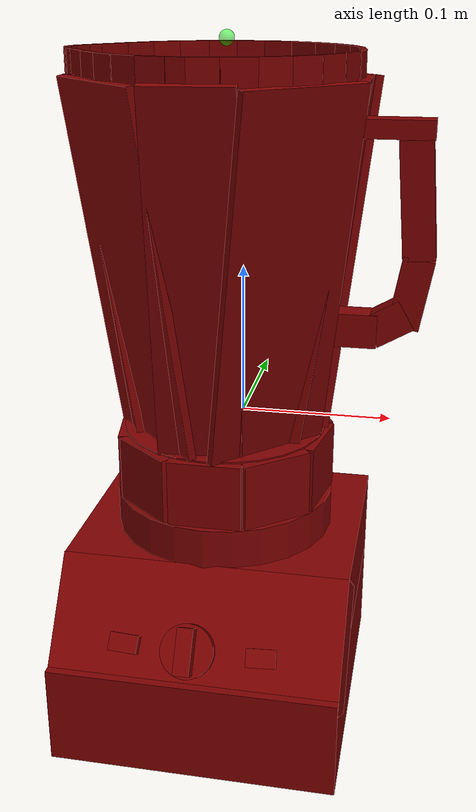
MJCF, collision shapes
<?xml version='1.0' encoding='UTF-8'?>
<mujoco model="model">
  <option timestep="0.002" gravity="0.0 0.0 -9.81"/>
  <compiler angle="radian"/>
  <asset>
    <mesh file="visuals/blade.obj" name="blade_vis"/>
    <mesh file="visuals/Body001.obj" name="Body001_vis"/>
    <mesh file="visuals/knob_speed.obj" name="knob_speed_vis"/>
    <mesh file="visuals/pitcher.obj" name="pitcher_vis"/>
    <mesh file="visuals/pitcher_main.obj" name="pitcher_main_vis"/>
    <mesh file="visuals/power_button.obj" name="power_button_vis"/>
    <mesh file="visuals/pulse_button.obj" name="pulse_button_vis"/>
    <texture file="visuals/T_BC001.png" name="Body001_material" type="2d"/>
    <material name="Body001_material" rgba="1 1 1 1.0" texture="Body001_material" shininess="0.5" specular="0.3103448502657381"/>
    <texture file="visuals/T_BC001.png" name="knob_speed_material" type="2d"/>
    <material name="knob_speed_material" rgba="1 1 1 1.0" texture="knob_speed_material" shininess="0.5" specular="0.3103448502657381"/>
    <texture file="visuals/T_BC001.png" name="pitcher_material" type="2d"/>
    <material name="pitcher_material" rgba="1 1 1 1.0" texture="pitcher_material" shininess="0.5" specular="0.3103448502657381"/>
    <texture file="visuals/T_BC001.png" name="blade_material" type="2d"/>
    <material name="blade_material" rgba="1 1 1 1.0" texture="blade_material" shininess="0.5" specular="0.3103448502657381"/>
    <material name="pitcher_main_material" rgba="0.04431306570768356 0.04431306570768356 0.04431306570768356 0.699999988079071" shininess="0.5" specular="0.3103448502657381"/>
    <texture file="visuals/T_BC001.png" name="power_button_material" type="2d"/>
    <material name="power_button_material" rgba="1 1 1 1.0" texture="power_button_material" shininess="0.5" specular="0.3103448502657381"/>
    <texture file="visuals/T_BC001.png" name="pulse_button_material" type="2d"/>
    <material name="pulse_button_material" rgba="1 1 1 1.0" texture="pulse_button_material" shininess="0.5" specular="0.3103448502657381"/>
  </asset>
  <default>
    <default class="visual">
      <geom conaffinity="0" contype="0" group="1" type="mesh"/>
    </default>
    <default class="collision">
      <geom group="0" rgba="0.5 0 0 0.5" density="1000" solref="0.004 1" solimp="0.998 0.998 0.001"/>
    </default>
    <default class="spawn">
      <geom group="0" rgba="1 1 1 0.5" contype="0" conaffinity="0"/>
      <site group="0" rgba="1 1 1 0.5"/>
    </default>
    <default class="region">
      <geom group="1" conaffinity="0" contype="0" rgba="0 1 0 0" mass="0"/>
    </default>
  </default>
  <worldbody>
    <body>
      <body name="object">
        <geom mesh="Body001_vis" type="mesh" solimp="0.998 0.998 0.001" solref="0.001 1" friction="0.95 0.3 0.1" class="visual" material="Body001_material"/>
        <geom type="box" pos="-0.01809036 -0.04847207 -0.15281687" size="0.09955644607543945 0.044624779373407364 0.032997120171785355" quat="0.8877590894699097 0.46030834317207336 0.0 0.0" class="collision"/>
        <geom type="box" pos="-0.01809036 0.00582542 -0.19773877" size="0.09955644607543945 0.10717274248600006 0.03572746366262436" quat="1.0 0.0 0.0 0.0" class="collision"/>
        <geom type="box" pos="-0.01809036 0.03171817 -0.13102740" size="0.09955644607543945 0.08168954402208328 0.032997116446495056" quat="1.0 0.0 0.0 0.0" class="collision"/>
        <geom type="cylinder" pos="-0.01852071 0.02733906 -0.08775429" size="0.07834652066230774 0.01722797192633152" quat="1.0 0.0 0.0 0.0" class="collision"/>
        <body name="knob_speed">
          <joint axis="0.0 0.8386704921722412 -0.5446390509605408" pos="-0.01888166 -0.10047842 -0.13289477" limited="true" name="knob_speed_joint" range="0.0 3.141592653589793" type="hinge" damping="0.05" armature="0.001"/>
          <geom mesh="knob_speed_vis" type="mesh" solimp="0.998 0.998 0.001" solref="0.001 1" friction="0.95 0.3 0.1" class="visual" material="knob_speed_material"/>
          <geom type="cylinder" pos="-0.01886045 -0.09661132 -0.13517393" size="0.018016861751675606 0.0032423920929431915" quat="0.8788170218467712 0.47715887427330017 -1.5054357599709063e-16 -4.4593045433660155e-17" class="collision"/>
          <geom class="collision" type="box" pos="-0.01881884 -0.10449058 -0.13009632" size="0.005413155537098646 0.005655909422785044 0.015304354019463062" quat="0.9588197469711304 -0.28401532769203186 5.934630009640784e-10 -1.7668519980418296e-09" name="knob_speed_main"/>
        </body>
        <body name="pitcher">
          <geom mesh="pitcher_vis" type="mesh" solimp="0.998 0.998 0.001" solref="0.001 1" friction="0.95 0.3 0.1" class="visual" material="pitcher_material"/>
          <geom class="collision" type="box" pos="0.10832232 0.02571175 0.08171118" size="0.023755626752972603 0.00880428496748209 0.010503297671675682" quat="0.6425239443778992 0.0 0.7662656307220459 0.0" name="pitcher_handle_3"/>
          <geom class="collision" type="box" pos="0.09394824 0.02562126 0.18678884" size="0.023671306669712067 0.00856267660856247 0.006058376282453537" quat="1.0 0.0 0.0 0.0" name="pitcher_handle_2"/>
          <geom class="collision" type="box" pos="0.10906937 0.02574660 0.14237803" size="0.038404859602451324 0.008756334893405437 0.010745563544332981" quat="0.736207127571106 0.0031635200139135122 0.6767215132713318 -0.006083985324949026" name="pitcher_handle_1"/>
          <geom class="collision" type="box" pos="0.09454579 0.02558017 0.06034962" size="0.013548550195991993 0.00896508153527975 0.011131912469863892" quat="0.25916787981987 -0.0006767964805476367 0.96578049659729 -0.009976900182664394" name="pitcher_handle_4"/>
          <geom class="collision" type="box" pos="0.07046634 0.02563762 0.05462812" size="0.016726261004805565 0.009409124031662941 0.011546011082828045" quat="1.0 0.0 0.0 0.0" name="pitcher_handle_0"/>
          <geom type="cylinder" pos="-0.01852071 0.02733906 -0.04532224" size="0.07198860496282578 0.023390205577015877" quat="1.0 0.0 0.0 0.0" class="collision"/>
          <body name="blade">
            <geom mesh="blade_vis" type="mesh" solimp="0.998 0.998 0.001" solref="0.001 1" friction="0.95 0.3 0.1" class="visual" material="blade_material"/>
            <geom type="cylinder" pos="-0.01881684 0.02567838 -0.00838821" size="0.007670124527066946 0.010787472128868103" quat="1.0 0.0 0.0 0.0" class="collision"/>
            <geom type="box" pos="-0.03225362 0.02584977 -0.00055446" size="0.008050991222262383 0.005571782123297453 0.000517530832439661" quat="0.979388952255249 0.0 -0.2019834816455841 0.0" class="collision"/>
            <geom type="box" pos="-0.04816998 0.02581310 -0.00748781" size="0.009483198635280132 0.003432794939726591 0.0005175308906473219" quat="0.9779711961746216 0.0 -0.20873989164829254 0.0" class="collision"/>
            <geom type="box" pos="0.00965797 0.02581310 -0.00746335" size="0.009483198635280132 0.003432794939726591 0.0005175308906473219" quat="7.383476940958644e-08 0.9779711961746216 1.5759423988015442e-08 -0.20873990654945374" class="collision"/>
            <geom type="box" pos="-0.00622194 0.02584977 -0.00040238" size="0.008050991222262383 0.005571782123297453 0.000517530832439661" quat="7.39418126727287e-08 0.979388952255249 1.524934134522482e-08 -0.2019834816455841" class="collision"/>
            <geom type="box" pos="-0.01854210 0.05551013 0.01383857" size="0.009483198635280132 0.003432794939726591 0.0005175308906473219" quat="0.6829333901405334 0.18330861628055573 -0.18330861628055573 0.6829333305358887" class="collision"/>
            <geom type="box" pos="-0.01850543 0.04039862 0.00529199" size="0.008050991222262383 0.005571782123297453 0.000517530832439661" quat="0.6841824650764465 0.17858955264091492 -0.17858952283859253 0.6841826438903809" class="collision"/>
            <geom type="box" pos="-0.01850543 0.01200211 0.00529199" size="0.008050991222262383 0.005571782123297453 0.000517530832439661" quat="0.17858953773975372 0.6841825842857361 0.6841825246810913 -0.17858950793743134" class="collision"/>
            <geom type="box" pos="-0.01854210 -0.00310941 0.01383857" size="0.009483198635280132 0.003432794939726591 0.0005175308906473219" quat="0.18330863118171692 0.6829333305358887 0.6829333901405334 -0.18330854177474976" class="collision"/>
          </body>
          <body name="pitcher_main">
            <geom class="region" type="cylinder" size="0.04703454300761223 0.09308323264122009" pos="-0.01868275 0.02462219 0.11455204" rgba="0 0 1 0.5" name="reg_int"/>
            <geom mesh="pitcher_main_vis" type="mesh" solimp="0.998 0.998 0.001" solref="0.001 1" friction="0.95 0.3 0.1" class="visual" material="pitcher_main_material"/>
            <geom type="box" pos="-0.07090936 -0.02348489 0.09613126" size="0.045629244297742844 0.0028163788374513388 0.12308038771152496" quat="0.9212555885314941 0.06958147138357162 -0.028821583837270737 -0.38159650564193726" class="collision"/>
            <geom type="box" pos="-0.01756476 -0.04493246 -0.04605228" size="0.025154929608106613 0.0036438615061342716 0.02311090938746929" quat="1.0 0.0 0.0 0.0" class="collision"/>
            <geom type="box" pos="-0.06783344 0.07670075 0.09601747" size="0.044201068580150604 0.003652127692475915 0.1228383257985115" quat="0.3815966546535492 0.02882160060107708 -0.06958146393299103 -0.9212555289268494" class="collision"/>
            <geom type="box" pos="0.03378635 0.07425912 0.09535586" size="0.045629240572452545 0.003518736455589533 0.12218938767910004" quat="0.38159632682800293 0.028821585699915886 0.06958150118589401 0.9212556481361389" class="collision"/>
            <geom type="box" pos="0.03085113 -0.02691572 0.09571808" size="0.045629244297742844 0.0028172575403004885 0.12266232073307037" quat="0.9212555289268494 0.06958147883415222 0.02882162295281887 0.3815966546535492" class="collision"/>
            <geom type="box" pos="-0.06309783 -0.02888154 -0.04605228" size="0.025154929608106613 0.0036438615061342716 0.023110834881663322" quat="0.9397565126419067 0.0 0.0 -0.3418445587158203" class="collision"/>
            <geom type="box" pos="-0.08760930 0.01232006 -0.04605228" size="0.025154929608106613 0.0036438617389649153 0.023110834881663322" quat="0.7679169774055481 0.0 0.0 -0.6405494213104248" class="collision"/>
            <geom type="box" pos="-0.07989546 0.06015814 -0.04605228" size="0.025154927745461464 0.0036438615061342716 0.023110834881663322" quat="0.501535177230835 0.0 0.0 -0.8651372790336609" class="collision"/>
            <geom type="box" pos="-0.04423649 0.09134788 -0.04605228" size="0.025154929608106613 0.0036438617389649153 0.023110834881663322" quat="0.1822759509086609 0.0 0.0 -0.9832473993301392" class="collision"/>
            <geom type="box" pos="0.00501489 0.09234687 -0.04605228" size="0.025154929608106613 0.0036438615061342716 0.023110834881663322" quat="0.1721271127462387 0.0 0.0 0.9850747585296631" class="collision"/>
            <geom type="box" pos="0.04248062 0.06168171 -0.04605228" size="0.025154929608106613 0.0036438617389649153 0.023110834881663322" quat="0.4993874430656433 0.0 0.0 0.8663787841796875" class="collision"/>
            <geom type="box" pos="0.05136558 0.01394640 -0.04605228" size="0.02515493333339691 0.003643861971795559 0.023110834881663322" quat="0.7668055891990662 0.0 0.0 0.6418794393539429" class="collision"/>
            <geom type="box" pos="0.02732160 -0.02824716 -0.04605228" size="0.025154931470751762 0.0036438617389649153 0.023110834881663322" quat="0.9407618045806885 0.0 0.0 0.33906814455986023" class="collision"/>
            <geom type="box" pos="-0.09642414 0.03989807 0.09310075" size="0.016055718064308167 0.002642229665070772 0.1249026358127594" quat="0.5063578486442566 0.06537144631147385 -0.037401046603918076 -0.8590282201766968" class="collision"/>
            <geom type="box" pos="-0.01886434 0.09872382 0.09557387" size="0.02850382775068283 0.00496790511533618 0.12339305877685547" quat="0.03943026438355446 0.00297812232747674 0.07525552809238434 0.9963799715042114" class="collision"/>
            <geom type="box" pos="0.05364773 0.02495055 0.09493019" size="0.02850382775068283 0.0036250585690140724 0.12294599413871765" quat="0.6996919512748718 0.0528470017015934 0.05366060510277748 0.7104638814926147" class="collision"/>
            <geom type="box" pos="-0.02162680 -0.04941703 0.09608285" size="0.02850382775068283 0.0036871093325316906 0.12410243600606918" quat="0.9962204694747925 0.07524346560239792 0.003268356202170253 0.04327280446887016" class="collision"/>
            <geom type="box" pos="-0.01129615 -0.06292772 0.22492507" size="0.009778773412108421 0.0017852018354460597 0.008487303741276264" quat="0.06675932556390762 0.0 -0.0 -0.9977691173553467" class="collision"/>
            <geom type="box" pos="0.00809636 -0.05864059 0.22492507" size="0.010880018584430218 0.0017852018354460597 0.008487303741276264" quat="0.14713305234909058 0.0 -0.0 -0.9891167283058167" class="collision"/>
            <geom type="box" pos="0.02641303 -0.05007567 0.22492507" size="0.010880018584430218 0.0017852018354460597 0.008487303741276264" quat="0.2713358700275421 0.0 -0.0 -0.9624847173690796" class="collision"/>
            <geom type="box" pos="0.04298128 -0.03712368 0.22492507" size="0.010880018584430218 0.0017852018354460597 0.008487303741276264" quat="0.3708913028240204 0.0 -0.0 -0.9286763072013855" class="collision"/>
            <geom type="box" pos="0.05604438 -0.02107970 0.22492507" size="0.010880018584430218 0.001785201602615416 0.008487303741276264" quat="0.48822838068008423 0.0 -0.0 -0.8727158904075623" class="collision"/>
            <geom type="box" pos="0.06508433 -0.00206348 0.22492507" size="0.010880018584430218 0.001785201602615416 0.008487303741276264" quat="0.5862191915512085 0.0 -0.0 -0.810152530670166" class="collision"/>
            <geom type="box" pos="0.06928605 0.01792838 0.22492507" size="0.010880018584430218 0.0017852018354460597 0.008487303741276264" quat="0.6735625267028809 0.0 -0.0 -0.7391302585601807" class="collision"/>
            <geom type="box" pos="0.06869246 0.03823472 0.22492507" size="0.010880018584430218 0.0017852018354460597 0.008487303741276264" quat="0.7563185691833496 0.0 -0.0 -0.6542035341262817" class="collision"/>
            <geom type="box" pos="0.06322093 0.05826223 0.22492507" size="0.010880018584430218 0.0017852018354460597 0.008487303741276264" quat="0.8274128437042236 0.0 -0.0 -0.5615941286087036" class="collision"/>
            <geom type="box" pos="0.05381114 0.07569932 0.22492507" size="0.010880018584430218 0.0017852018354460597 0.008487303741276264" quat="0.8888170719146729 0.0 -0.0 -0.458262175321579" class="collision"/>
            <geom type="box" pos="0.03985910 0.09137375 0.22492507" size="0.010880018584430218 0.0017852018354460597 0.008487303741276264" quat="0.9347479939460754 0.0 -0.0 -0.3553113043308258" class="collision"/>
            <geom type="box" pos="0.02284788 0.10324140 0.22492507" size="0.010880018584430218 0.0017852018354460597 0.008487303741276264" quat="0.9685055017471313 0.0 -0.0 -0.24899208545684814" class="collision"/>
            <geom type="box" pos="0.00358632 0.11081584 0.22492507" size="0.010880018584430218 0.0017852018354460597 0.008487303741276264" quat="0.9915497303009033 0.0 -0.0 -0.1297272890806198" class="collision"/>
            <geom type="box" pos="-0.01629415 0.11363297 0.22492507" size="0.010880018584430218 0.001785201602615416 0.008487303741276264" quat="0.9999117255210876 0.0 -0.0 -0.013286758214235306" class="collision"/>
            <geom type="box" pos="-0.03664250 0.11170036 0.22492507" size="0.010880018584430218 0.0017852018354460597 0.008487303741276264" quat="0.9943395256996155 0.0 0.0 0.10624910891056061" class="collision"/>
            <geom type="box" pos="-0.05585400 0.10511915 0.22492507" size="0.010880018584430218 0.0017852018354460597 0.008487303741276264" quat="0.9766029119491577 0.0 0.0 0.21505045890808105" class="collision"/>
            <geom type="box" pos="-0.07388428 0.09382351 0.22492507" size="0.010880018584430218 0.0017852018354460597 0.008487303741276264" quat="0.9429963231086731 0.0 0.0 0.3328031897544861" class="collision"/>
            <geom type="box" pos="-0.08827139 0.07911872 0.22492507" size="0.010880018584430218 0.001785201602615416 0.008487303741276264" quat="0.9031723737716675 0.0 0.0 0.42927801609039307" class="collision"/>
            <geom type="box" pos="-0.10128652 0.06177015 0.22492507" size="0.010880018584430218 0.0016841922188177705 0.008487303741276264" quat="0.8911570906639099 0.0 0.0 0.4536948800086975" class="collision"/>
            <geom type="box" pos="-0.11050456 0.04910029 0.22492507" size="0.005767347291111946 0.0016841922188177705 0.008487303741276264" quat="0.8911570906639099 0.0 0.0 0.4536948800086975" class="collision"/>
            <geom type="box" pos="-0.11632763 0.03943764 0.22492507" size="0.005767347291111946 0.0016841922188177705 0.008487303741276264" quat="0.8530058264732361 0.0 0.0 0.5219014286994934" class="collision"/>
            <geom type="box" pos="-0.11978912 0.02965660 0.22492507" size="0.005767347291111946 0.0016841919859871268 0.008487303741276264" quat="0.7735803723335266 0.0 0.0 0.6336982250213623" class="collision"/>
            <geom type="box" pos="-0.11961715 0.02076388 0.22492507" size="0.004639361519366503 0.0016841922188177705 0.008487303741276264" quat="0.6352989673614502 0.0 0.0 0.7722662687301636" class="collision"/>
            <geom type="box" pos="-0.11632067 0.01172132 0.22492507" size="0.005767347291111946 0.0016841919859871268 0.008487303741276264" quat="0.5287463665008545 0.0 0.0 0.8487798571586609" class="collision"/>
            <geom type="box" pos="-0.11177382 0.00402076 0.22492507" size="0.005767347291111946 0.0016841922188177705 0.008487303741276264" quat="0.4682562053203583 0.0 0.0 0.8835927248001099" class="collision"/>
            <geom type="box" pos="-0.10198892 -0.00949936 0.22492507" size="0.011069326661527157 0.0016841919859871268 0.008487303741276264" quat="0.4518972337245941 0.0 0.0 0.8920699954032898" class="collision"/>
            <geom type="box" pos="-0.08899396 -0.02687066 0.22492507" size="0.011069326661527157 0.0016841919859871268 0.008487303741276264" quat="0.4328644275665283 0.0 0.0 0.9014590382575989" class="collision"/>
            <geom type="box" pos="-0.07489772 -0.04174084 0.22492507" size="0.00976540707051754 0.001684191869571805 0.008487303741276264" quat="0.3468650281429291 0.0 0.0 0.937915027141571" class="collision"/>
            <geom type="box" pos="-0.05962705 -0.05228162 0.22492507" size="0.00976540707051754 0.001684191869571805 0.008487303741276264" quat="0.2482415735721588 0.0 0.0 0.9686981439590454" class="collision"/>
            <geom type="box" pos="-0.04192784 -0.05965288 0.22492507" size="0.00976540707051754 0.001684191869571805 0.008487303741276264" quat="0.13588596880435944 0.0 0.0 0.990724503993988" class="collision"/>
            <geom type="box" pos="-0.02740447 -0.06293172 0.22492507" size="0.007216145284473896 0.001684191869571805 0.008487303741276264" quat="0.09351144731044769 0.0 0.0 0.9956182241439819" class="collision"/>
            <geom type="box" pos="-0.09682555 0.00893536 0.09234002" size="0.016055718064308167 0.0026422301307320595 0.1265544295310974" quat="0.8443755507469177 0.04088565707206726 -0.06325050443410873 -0.5304316282272339" class="collision"/>
          </body>
        </body>
        <body name="power_button">
          <joint axis="0.10692079365253448 0.8121441602706909 -0.5735763907432556" pos="-0.06417608 -0.08929481 -0.13959697" limited="true" name="power_button_joint" range="0.0 0.0015" type="slide" damping="1" frictionloss="1" armature=".01" stiffness="0.5" springref="-0.5"/>
          <geom mesh="power_button_vis" type="mesh" solimp="0.998 0.998 0.001" solref="0.001 1" friction="0.95 0.3 0.1" class="visual" material="power_button_material"/>
          <geom class="collision" type="box" pos="-0.06417608 -0.08929481 -0.13959697" size="0.010050386190414429 0.002920703962445259 0.00618571974337101" quat="0.9528091549873352 -0.3004198372364044 0.013116620481014252 -0.041600555181503296" name="power_button_main"/>
        </body>
        <body name="pulse_button">
          <joint axis="-0.10692080110311508 0.8121441602706909 -0.5735763907432556" pos="0.02886092 -0.08929481 -0.13959697" limited="true" name="pulse_button_joint" range="0.0 0.0015" type="slide" damping="1" frictionloss="1" armature=".01" stiffness="0.5" springref="-0.5"/>
          <geom mesh="pulse_button_vis" type="mesh" solimp="0.998 0.998 0.001" solref="0.001 1" friction="0.95 0.3 0.1" class="visual" material="pulse_button_material"/>
          <geom class="collision" type="box" pos="0.02886092 -0.08929481 -0.13959697" size="0.010050386190414429 0.002920703962445259 0.00618571974337101" quat="0.9528091549873352 -0.3004198372364044 -0.013116620481014252 0.041600555181503296" name="pulse_button_main"/>
        </body>
        <geom class="region" name="reg_main" type="box" pos="-0.020300514999999998 0.003472349999999999 1.5500000000168157e-07" size="0.103003395 0.11412227 0.234484775"/>
      </body>
      <site rgba="0 1 0 0.5" size="0.005" pos="-0.01570330 0.02476110 0.23957100" name="anchor_site"/>
    </body>
  </worldbody>
  <actuator>
    <motor name="knob_speed_joint_actuator" joint="knob_speed_joint" gear="10"/>
    <motor name="power_button_joint_actuator" joint="power_button_joint" gear="0.5"/>
    <motor name="pulse_button_joint_actuator" joint="pulse_button_joint" gear="0.5"/>
  </actuator>
</mujoco>
